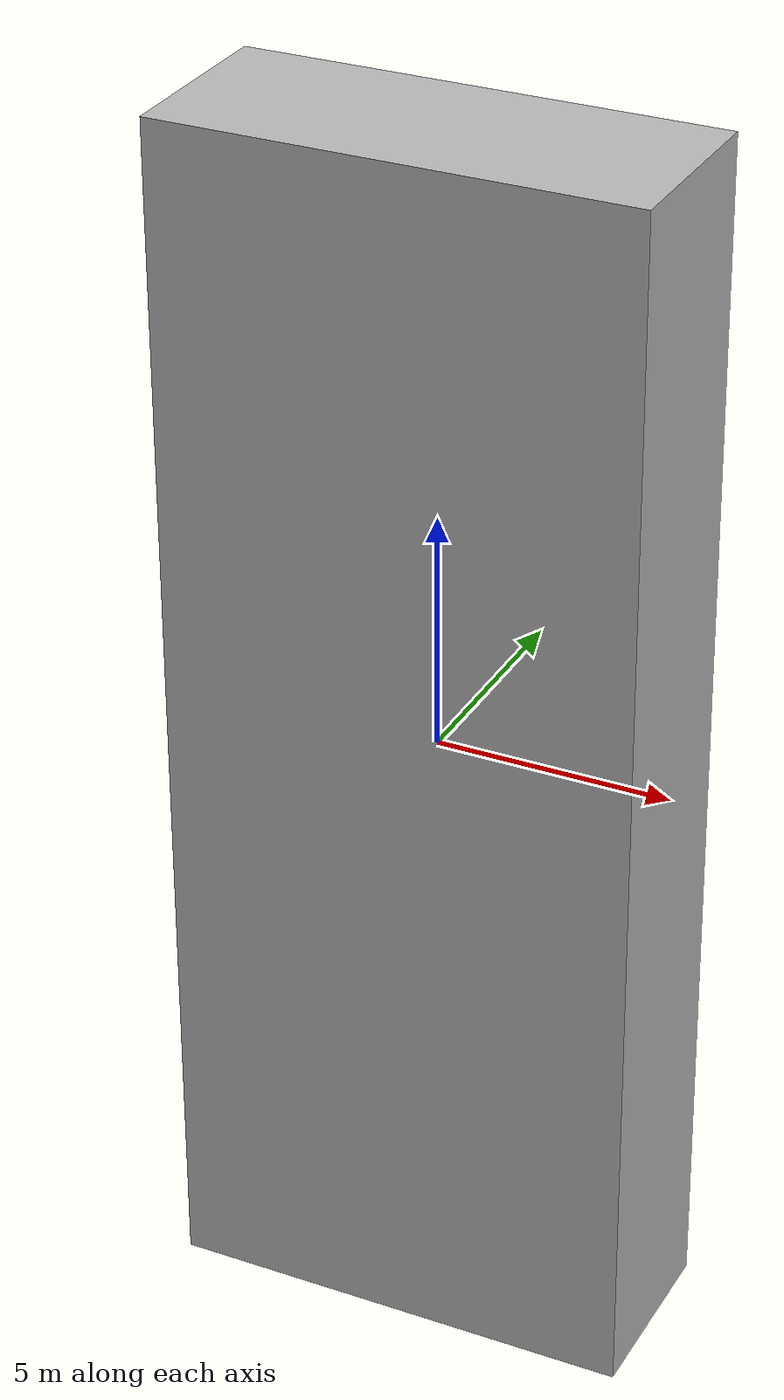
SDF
<?xml version='1.0'?>
      <sdf version='1.5'>
        <model name="box">
          <link name='box_link'>
            <pose>0 0 0 0 0 0</pose>

            <collision name='collision'>
              <geometry>
                <box>
                  <size>10 4 26</size>
                </box>
              </geometry>
            </collision>

            <visual name='visual'>
              <geometry>
                <box>
                  <size>10 4 26</size>
                </box>
              </geometry>
	      <material>
          	<script>
            	  <uri>model://box/materials/scripts/</uri>
	          <uri>model://box/materials/textures</uri>
                  <name>Box/Image</name>
                </script>
              </material>

            </visual>
          </link>
      </model>
    </sdf>
